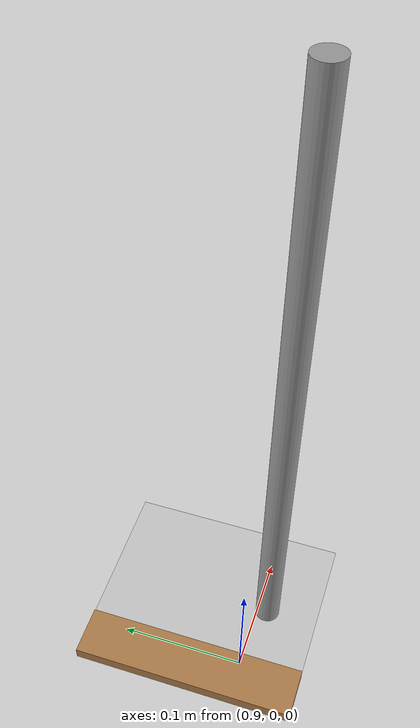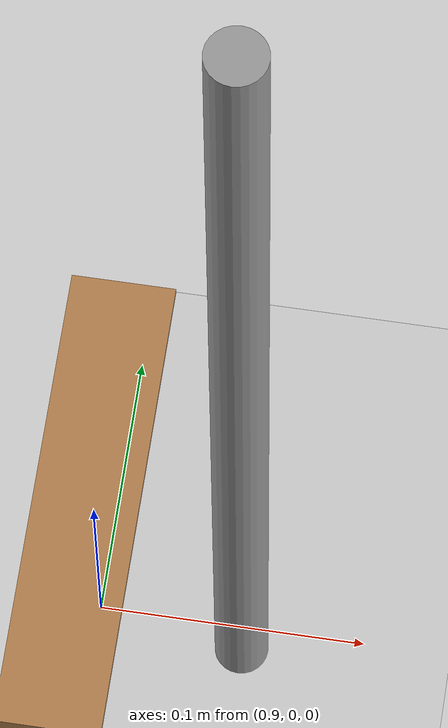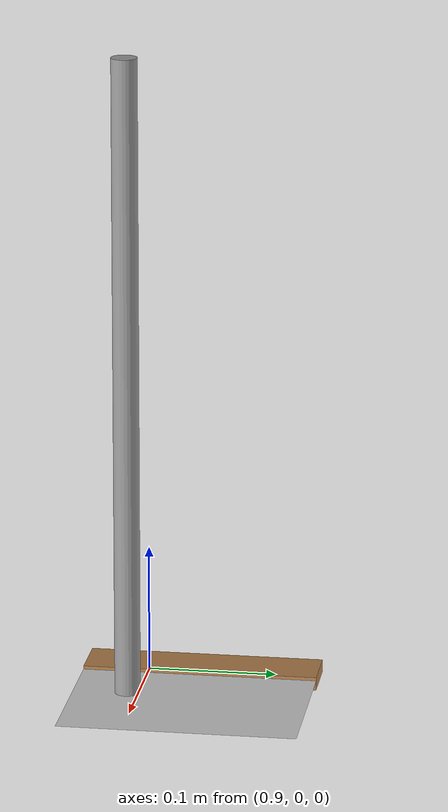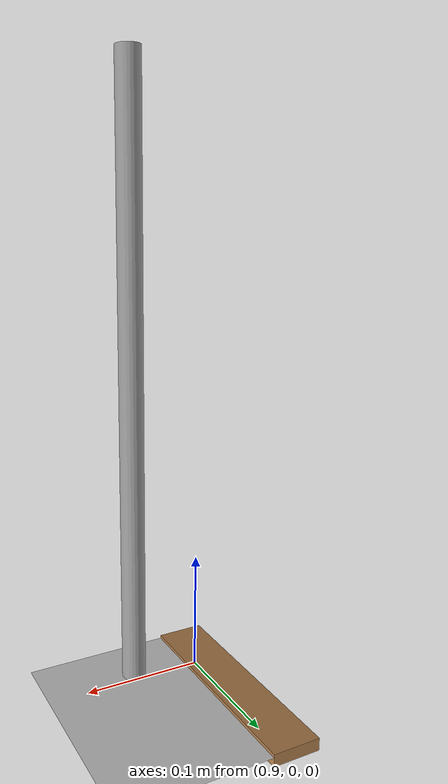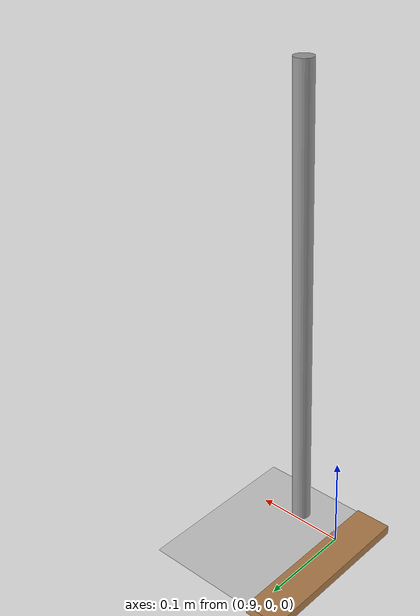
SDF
<?xml version="1.0" ?>

<sdf version="1.5">
<world name='my_world'>
    <light name='sun' type='directional'>
      <cast_shadows>1</cast_shadows>
      <pose frame=''>0 0 10 0 -0 0</pose>
      <diffuse>0.8 0.8 0.8 1</diffuse>
      <specular>0.2 0.2 0.2 1</specular>
      <attenuation>
        <range>1000</range>
        <constant>0.9</constant>
        <linear>0.01</linear>
        <quadratic>0.001</quadratic>
      </attenuation>
      <direction>-0.5 0.1 -0.9</direction>
    </light>
    <model name='ground_plane'>
      <static>1</static>
      <link name='link'>
        <collision name='collision'>
          <geometry>
            <plane>
              <normal>0 0 1</normal>
              <size>100 100</size>
            </plane>
          </geometry>
          <surface>
            <contact>
              <collide_bitmask>65535</collide_bitmask>
              <ode/>
            </contact>
            <friction>
              <ode>
                <mu>100</mu>
                <mu2>50</mu2>
              </ode>
              <torsional>
                <ode/>
              </torsional>
            </friction>
            <bounce/>
          </surface>
          <max_contacts>10</max_contacts>
        </collision>
        <visual name='visual'>
          <cast_shadows>0</cast_shadows>
          <geometry>
            <plane>
              <normal>0 0 1</normal>
              <size>100 100</size>
            </plane>
          </geometry>
          <material>
            <script>
              <uri>file://media/materials/scripts/gazebo.material</uri>
              <name>Gazebo/Grey</name>
            </script>
          </material>
        </visual>
        <self_collide>0</self_collide>
        <enable_wind>0</enable_wind>
        <kinematic>0</kinematic>
      </link>
    </model>
    <gravity>0 0 -9.8</gravity>
    <magnetic_field>6e-06 2.3e-05 -4.2e-05</magnetic_field>
    <atmosphere type='adiabatic'/>
    <physics name='default_physics' default='0' type='ode'>
      <max_step_size>0.001</max_step_size>
      <real_time_factor>1</real_time_factor>
      <real_time_update_rate>1000</real_time_update_rate>
    </physics>
    <scene>
      <ambient>0.4 0.4 0.4 1</ambient>
      <background>0.7 0.7 0.7 1</background>
      <shadows>1</shadows>
    </scene>
    <wind/>
    <spherical_coordinates>
      <surface_model>EARTH_WGS84</surface_model>
      <latitude_deg>0</latitude_deg>
      <longitude_deg>0</longitude_deg>
      <elevation>0</elevation>
      <heading_deg>0</heading_deg>
    </spherical_coordinates>

  <model name="wooden_board">
    <static>1</static>
    <link name="base">

      <pose>0 0 -0.003076 0 0 0</pose>
      <inertial>
        <mass>0.2765</mass>
        <inertia>
          <ixx>0.0025148009472833336</ixx>
          <ixy>0</ixy>
          <ixz>0</ixz>
          <iyy>0.00024037001228333334</iyy>
          <iyz>0</iyz>
          <izz>0.002750128908333333</izz>
        </inertia>
      </inertial>

      <collision name="collision">
        <geometry>
          <box>
            <size>1.816 2.502 0.0</size>
          </box>
        </geometry>
        <surface>
          <contact>
            <!-- Red Pine coefficients for longitudinal axis of the wood
                 according to:
                 http://www.fpl.fs.fed.us/documnts/fplgtr/fplgtr113/ch04.pdf -->
            <poissons_ratio>0.347</poissons_ratio>
            <elastic_modulus>8.8e+09</elastic_modulus>
            <ode>
              <kp>100000</kp>
              <kd>100</kd>
              <max_vel>100.0</max_vel>
              <min_depth>0.001</min_depth>
            </ode>
          </contact>
          <friction>
            <torsional>
              <coefficient>1.0</coefficient>
              <use_patch_radius>0</use_patch_radius>
              <surface_radius>0.01</surface_radius>
            </torsional>
          </friction>
        </surface>
      </collision>

      <visual name="visual">
        <geometry>
          <box>
            <size>1.816 2.502 0.01046</size>
          </box>
        </geometry>
        <material>
          <script>
            <uri>file://media/materials/scripts/gazebo.material</uri>
            <name>Gazebo/Wood</name>
          </script>
        </material>
      </visual>
    </link>
    </model>
    <model name="stand_pole">
    <static>1</static>
    <link name="support">
    <collision name="stand">
        <pose>0.954762 -0.008436 0.25025 0 0 0</pose>
        <geometry>
          <cylinder>
            <radius>0.01</radius>
            <length>0.5</length>
          </cylinder>
        </geometry>
      </collision>
      <visual name="stand">
        <pose>0.954762 -0.008436 0.25025 0 0 0</pose>
        <geometry>
          <cylinder>
            <radius>0.01</radius>
            <length>0.5</length>
          </cylinder>
        </geometry>
        <material>
          <script>
            <uri>file://media/materials/scripts/gazebo.material</uri>
            <name>Gazebo/Grey</name>
          </script>
        </material>
      </visual>
    </link>
    </model>
  </world>
</sdf>
